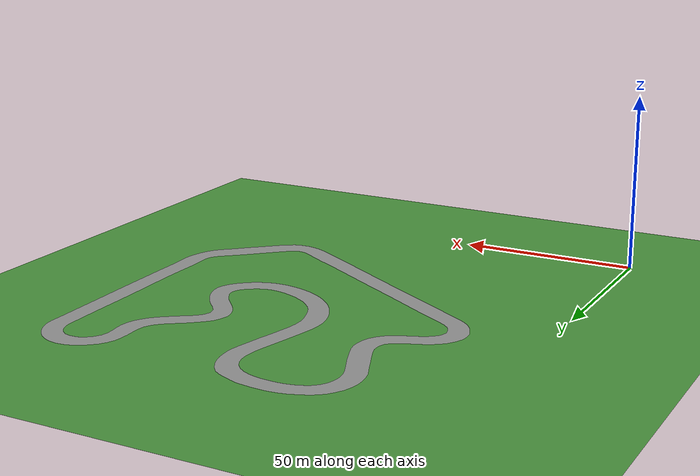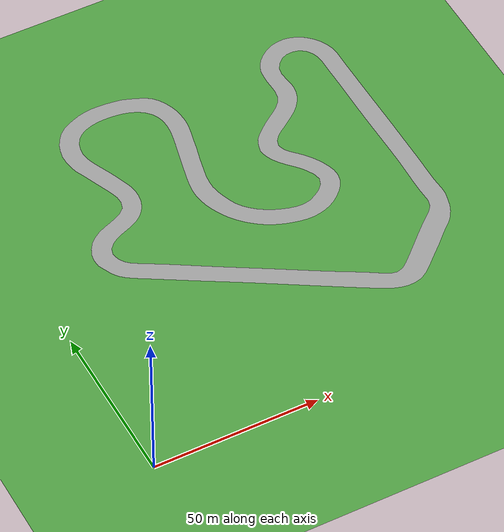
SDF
<sdf version="1.7">
 <world name="default">
  <light name="sun" type="directional">
   <pose>0 0 10 0 -0 0</pose>
   <diffuse>0.8 0.8 0.8 1</diffuse>
   <specular>0.2 0.2 0.2 1</specular>
   <attenuation>
    <range>1000</range>
    <constant>0.9</constant>
    <linear>0.01</linear>
    <quadratic>0.001</quadratic>
   </attenuation>
   <direction>-0.5 0.1 -0.9</direction>
   <spot><inner_angle>0</inner_angle><outer_angle>0</outer_angle><falloff>0</falloff></spot>
  </light>
  <model name="track_plane">
   <static>1</static>
   <link name="link_track">
    <collision name="collision">
     <geometry><mesh><uri>file://meshes/track-svg-python.dae</uri></mesh></geometry>
     <surface><friction><ode><mu>100</mu><mu2>50</mu2></ode></friction></surface>
    </collision>
    <visual name="visual">
     <geometry><mesh><uri>file://meshes/track-svg-python.dae</uri></mesh></geometry>
     <material>
      <script><uri>file://media/materials/scripts/gazebo.material</uri><name>Gazebo/Grey</name></script>
     </material>
    </visual>
   </link>
  </model>
  <model name="ground_plane">
   <static>1</static>
   <link name="link_ground">
    <collision name="collision">
     <geometry><plane><normal>0 0 1</normal><size>1000 1000</size></plane></geometry>
     <surface><friction><ode><mu>100</mu><mu2>50</mu2></ode></friction></surface>
    </collision>
    <visual name="visual">
     <geometry><plane><normal>0 0 1</normal><size>1000 1000</size></plane></geometry>
     <material>
      <script><uri>file://media/materials/scripts/gazebo.material</uri><name>Gazebo/Grass</name></script>
     </material>
    </visual>
   </link>
  </model>
  <gravity>0 0 -9.8</gravity>
  <magnetic_field>6e-06 2.3e-05 -4.2e-05</magnetic_field>
  <atmosphere type="adiabatic"/>
  <physics type="ode">
   <max_step_size>0.001</max_step_size>
   <real_time_factor>1</real_time_factor>
   <real_time_update_rate>1000</real_time_update_rate>
  </physics>
  <scene><ambient>0.4 0.4 0.4 1</ambient><background>0.7 0.7 0.7 1</background><shadows>1</shadows></scene>
  <spherical_coordinates>
   <surface_model>EARTH_WGS84</surface_model>
   <latitude_deg>40.437265</latitude_deg>
   <longitude_deg>-86.945105</longitude_deg>
   <elevation>173.269</elevation>
   <heading_deg>0.0</heading_deg>
  </spherical_coordinates>
 </world>
</sdf>
